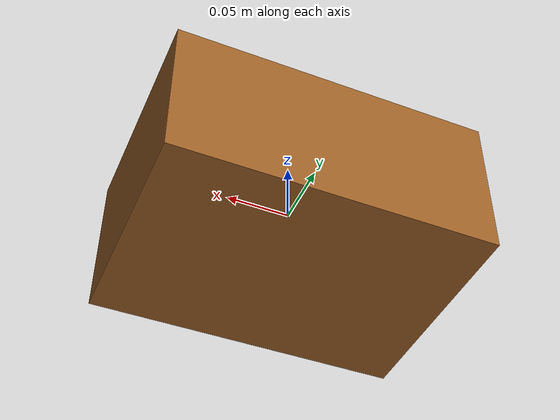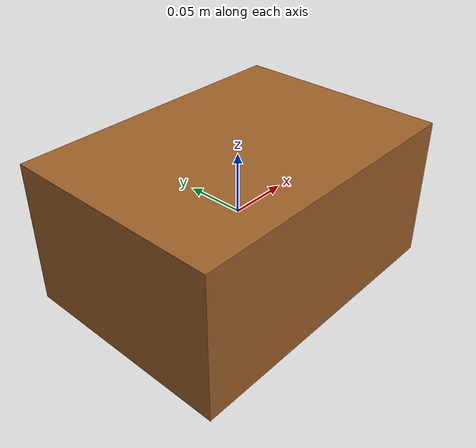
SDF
<?xml version="1.0"?>
<sdf version="1.10">
  <model name="box_medium">
    <link name="base_link">
      <inertial>
        <mass>1.0</mass>
        <inertia>
          <ixx>0.003900</ixx>
          <ixy>0.0</ixy>
          <ixz>0.0</ixz>
          <iyy>0.006408</iyy>
          <iyz>0.0</iyz>
          <izz>0.007908</izz>
        </inertia>
      </inertial>
      <collision name="collision">
        <geometry><box><size>0.25 0.18 0.12</size></box></geometry>
        <surface>
          <friction><ode><mu>0.70</mu><mu2>0.70</mu2></ode></friction>
          <bounce>
            <restitution_coefficient>0.08</restitution_coefficient>
            <threshold>100000</threshold>
          </bounce>
        </surface>
      </collision>
      <visual name="visual">
        <geometry><box><size>0.25 0.18 0.12</size></box></geometry>
        <material>
          <ambient>0.55 0.32 0.12 1</ambient>
          <diffuse>0.62 0.38 0.16 1</diffuse>
        </material>
      </visual>
    </link>
  </model>
</sdf>
